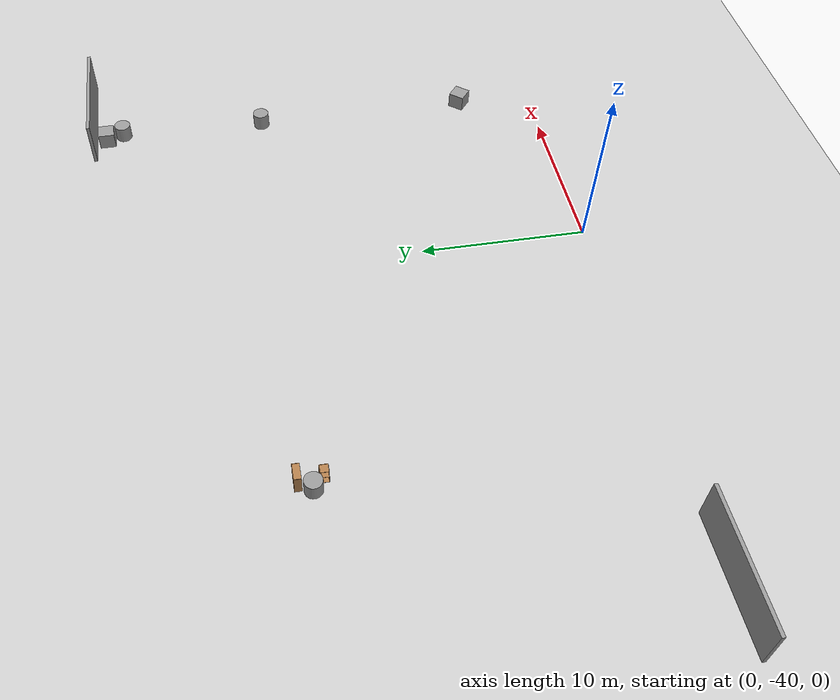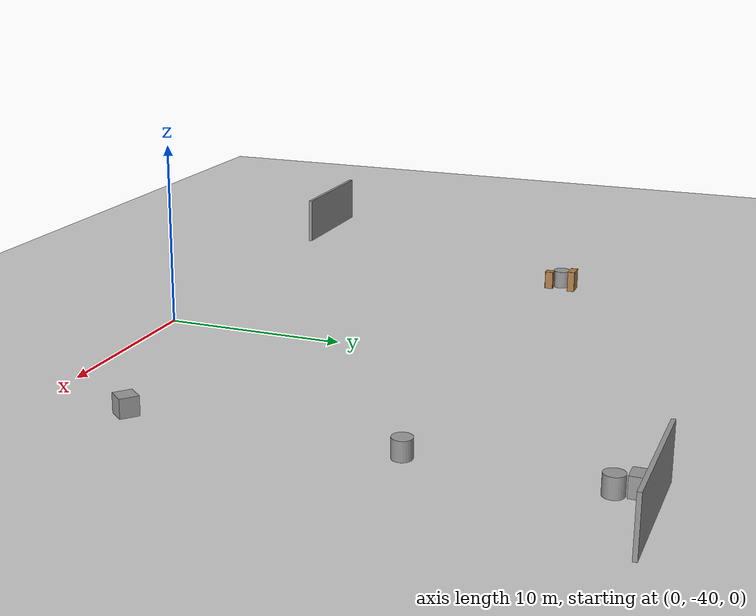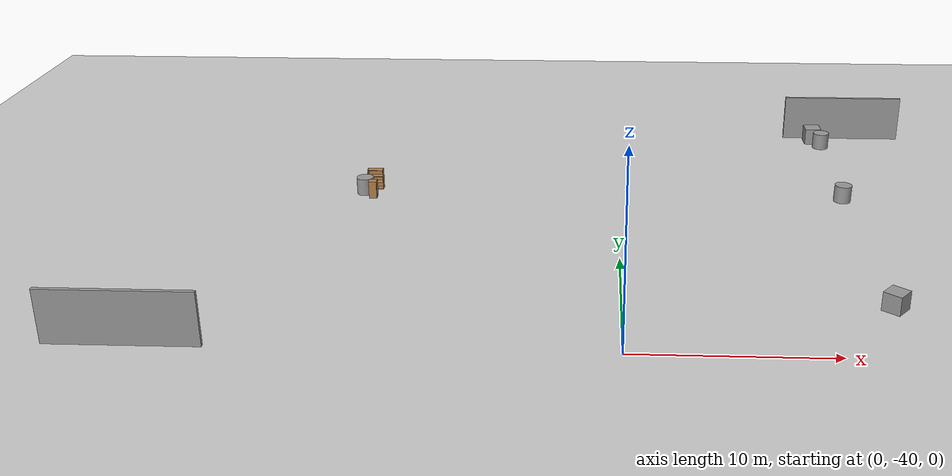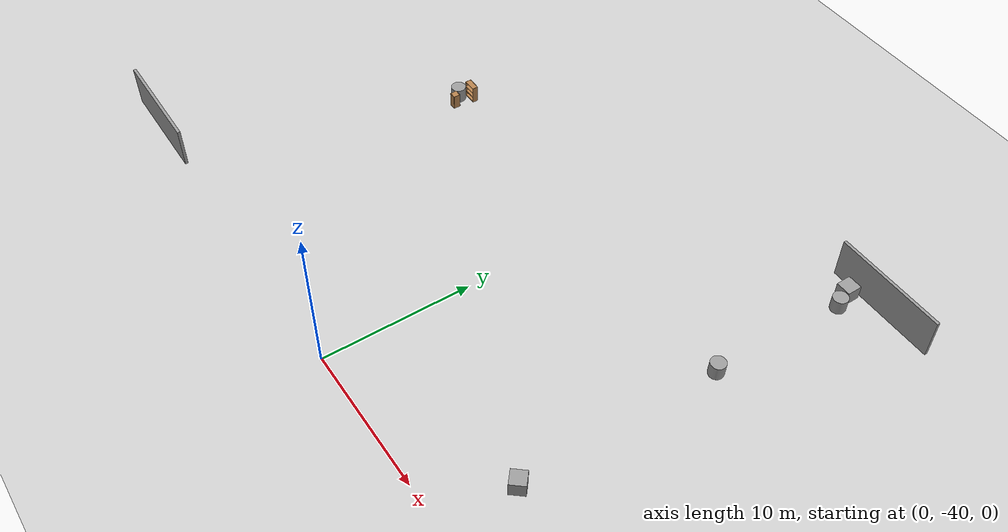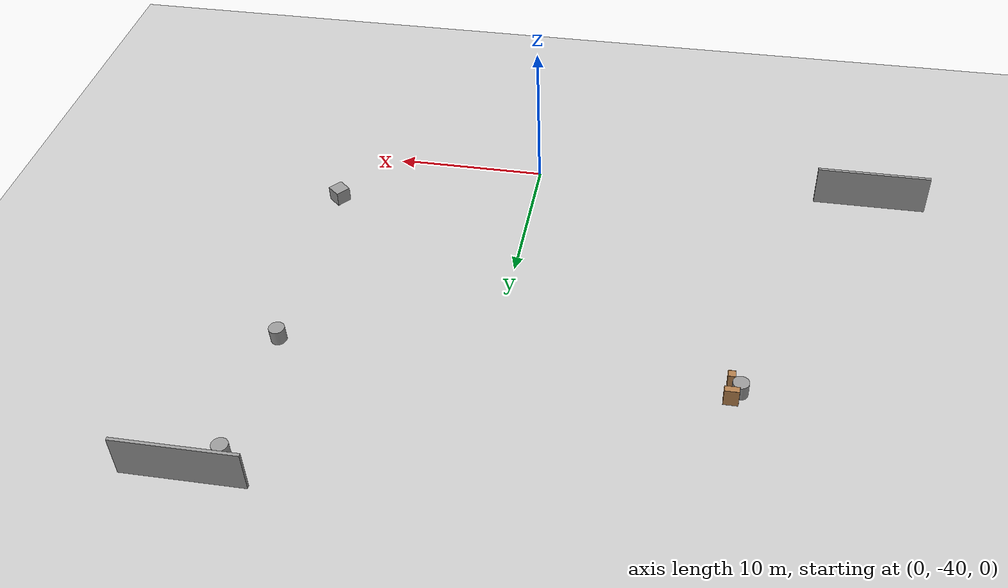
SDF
<sdf version="1.4">
 <world name="default">
  <light name="sun" type="directional">
   <pose>0 0 10 0 -0 0</pose>
   <diffuse>0.8 0.8 0.8 1</diffuse>
   <specular>0.2 0.2 0.2 1</specular>
   <attenuation>
    <range>1000</range>
    <constant>0.9</constant>
    <linear>0.01</linear>
    <quadratic>0.001</quadratic>
   </attenuation>
   <direction>-0.5 0.1 -0.9</direction>
  </light>
  <model name="ground_plane">
   <static>1</static>
   <link name="link">
    <collision name="collision">
     <geometry><plane><normal>0 0 1</normal><size>100 100</size></plane></geometry>
     <surface><friction><ode><mu>100</mu><mu2>50</mu2></ode></friction></surface>
    </collision>
    <visual name="visual">
     <cast_shadows>0</cast_shadows>
     <geometry><plane><normal>0 0 1</normal><size>100 100</size></plane></geometry>
     <material>
      <script><uri>file://media/materials/scripts/gazebo.material</uri><name>Gazebo/Grey</name></script>
     </material>
    </visual>
    <velocity_decay><linear>0</linear><angular>0</angular></velocity_decay>
   </link>
  </model>
  <physics type="ode">
   <max_step_size>0.001</max_step_size>
   <real_time_factor>1</real_time_factor>
   <real_time_update_rate>1000</real_time_update_rate>
   <gravity>0 0 -9.8</gravity>
  </physics>
  <scene><ambient>0.4 0.4 0.4 1</ambient><background>0.7 0.7 0.7 1</background><shadows>1</shadows></scene>
  <spherical_coordinates>
   <surface_model>EARTH_WGS84</surface_model>
   <latitude_deg>0</latitude_deg>
   <longitude_deg>0</longitude_deg>
   <elevation>0</elevation>
   <heading_deg>0</heading_deg>
  </spherical_coordinates>
  <model name="grey_wall">
   <static>1</static>
   <link name="link">
    <pose>0 0 1.4 0 -0 0</pose>
    <collision name="collision"><geometry><box><size>7.5 0.2 2.8</size></box></geometry></collision>
    <visual name="visual">
     <cast_shadows>0</cast_shadows>
     <geometry><box><size>7.5 0.2 2.8</size></box></geometry>
     <material>
      <script>
       <uri>model://grey_wall/materials/scripts</uri>
       <uri>model://grey_wall/materials/textures</uri>
       <name>vrc/grey_wall</name>
      </script>
     </material>
    </visual>
    <velocity_decay><linear>0</linear><angular>0</angular></velocity_decay>
   </link>
   <pose>15 -10.5536 0 0 -0 0</pose>
  </model>
  <model name="grey_wall_0">
   <static>1</static>
   <link name="link">
    <pose>0 0 1.4 0 -0 0</pose>
    <collision name="collision"><geometry><box><size>7.5 0.2 2.8</size></box></geometry></collision>
    <visual name="visual">
     <cast_shadows>0</cast_shadows>
     <geometry><box><size>7.5 0.2 2.8</size></box></geometry>
     <material>
      <script>
       <uri>model://grey_wall/materials/scripts</uri>
       <uri>model://grey_wall/materials/textures</uri>
       <name>vrc/grey_wall</name>
      </script>
     </material>
    </visual>
    <velocity_decay><linear>0</linear><angular>0</angular></velocity_decay>
   </link>
   <pose>-23 -40 0 0 -0 0</pose>
  </model>
  <model name="unit_box_1">
   <pose>13.234 -35.2182 0.5 0 -0 -0.693617</pose>
   <link name="link">
    <inertial>
     <mass>1</mass>
     <inertia><ixx>1</ixx><ixy>0</ixy><ixz>0</ixz><iyy>1</iyy><iyz>0</iyz><izz>1</izz></inertia>
    </inertial>
    <collision name="collision"><geometry><box><size>1 1 1</size></box></geometry></collision>
    <visual name="visual">
     <geometry><box><size>1 1 1</size></box></geometry>
     <material>
      <script><uri>file://media/materials/scripts/gazebo.material</uri><name>Gazebo/Grey</name></script>
     </material>
    </visual>
    <velocity_decay><linear>0</linear><angular>0</angular></velocity_decay>
   </link>
   <static>0</static>
  </model>
  <model name="unit_cylinder_1">
   <pose>13.1694 -21.5949 0.514126 -0.00739 0.027698 0.148297</pose>
   <link name="link">
    <inertial>
     <mass>1</mass>
     <inertia><ixx>1</ixx><ixy>0</ixy><ixz>0</ixz><iyy>1</iyy><iyz>0</iyz><izz>1</izz></inertia>
    </inertial>
    <collision name="collision">
     <geometry><cylinder><radius>0.5</radius><length>1</length></cylinder></geometry>
    </collision>
    <visual name="visual">
     <geometry><cylinder><radius>0.5</radius><length>1</length></cylinder></geometry>
     <material>
      <script><uri>file://media/materials/scripts/gazebo.material</uri><name>Gazebo/Grey</name></script>
     </material>
    </visual>
    <velocity_decay><linear>0</linear><angular>0</angular></velocity_decay>
   </link>
   <static>0</static>
  </model>
  <model name="unit_box_2">
   <pose>13.005 -11.3635 0.5 0 -0 0.009973</pose>
   <link name="link">
    <inertial>
     <mass>1</mass>
     <inertia><ixx>1</ixx><ixy>0</ixy><ixz>0</ixz><iyy>1</iyy><iyz>0</iyz><izz>1</izz></inertia>
    </inertial>
    <collision name="collision"><geometry><box><size>1 1 1</size></box></geometry></collision>
    <visual name="visual">
     <geometry><box><size>1 1 1</size></box></geometry>
     <material>
      <script><uri>file://media/materials/scripts/gazebo.material</uri><name>Gazebo/Grey</name></script>
     </material>
    </visual>
    <velocity_decay><linear>0</linear><angular>0</angular></velocity_decay>
   </link>
   <static>0</static>
  </model>
  <model name="unit_cylinder_2">
   <pose>13.4096 -12.4257 0.499992 -1e-06 -0 0</pose>
   <link name="link">
    <inertial>
     <mass>1</mass>
     <inertia><ixx>1</ixx><ixy>0</ixy><ixz>0</ixz><iyy>1</iyy><iyz>0</iyz><izz>1</izz></inertia>
    </inertial>
    <collision name="collision">
     <geometry><cylinder><radius>0.5</radius><length>1</length></cylinder></geometry>
    </collision>
    <visual name="visual">
     <geometry><cylinder><radius>0.5</radius><length>1</length></cylinder></geometry>
     <material>
      <script><uri>file://media/materials/scripts/gazebo.material</uri><name>Gazebo/Grey</name></script>
     </material>
    </visual>
    <velocity_decay><linear>0</linear><angular>0</angular></velocity_decay>
   </link>
   <static>0</static>
  </model>
  <model name="bookshelf">
   <static>1</static>
   <link name="link">
    <inertial><mass>1</mass></inertial>
    <collision name="back">
     <pose>0 0.005 0.6 0 -0 0</pose>
     <geometry><box><size>0.9 0.01 1.2</size></box></geometry>
    </collision>
    <visual name="visual1">
     <pose>0 0.005 0.6 0 -0 0</pose>
     <geometry><box><size>0.9 0.01 1.2</size></box></geometry>
     <material>
      <script><uri>file://media/materials/scripts/gazebo.material</uri><name>Gazebo/Wood</name></script>
     </material>
    </visual>
    <collision name="left_side">
     <pose>0.45 -0.195 0.6 0 -0 0</pose>
     <geometry><box><size>0.02 0.4 1.2</size></box></geometry>
    </collision>
    <visual name="visual2">
     <pose>0.45 -0.195 0.6 0 -0 0</pose>
     <geometry><box><size>0.02 0.4 1.2</size></box></geometry>
     <material>
      <script><uri>file://media/materials/scripts/gazebo.material</uri><name>Gazebo/Wood</name></script>
     </material>
    </visual>
    <collision name="right_side">
     <pose>-0.45 -0.195 0.6 0 -0 0</pose>
     <geometry><box><size>0.02 0.4 1.2</size></box></geometry>
    </collision>
    <visual name="visual3">
     <pose>-0.45 -0.195 0.6 0 -0 0</pose>
     <geometry><box><size>0.02 0.4 1.2</size></box></geometry>
     <material>
      <script><uri>file://media/materials/scripts/gazebo.material</uri><name>Gazebo/Wood</name></script>
     </material>
    </visual>
    <collision name="bottom">
     <pose>0 -0.195 0.03 0 -0 0</pose>
     <geometry><box><size>0.88 0.4 0.06</size></box></geometry>
    </collision>
    <visual name="visual4">
     <pose>0 -0.195 0.03 0 -0 0</pose>
     <geometry><box><size>0.88 0.4 0.06</size></box></geometry>
     <material>
      <script><uri>file://media/materials/scripts/gazebo.material</uri><name>Gazebo/Wood</name></script>
     </material>
    </visual>
    <collision name="top">
     <pose>0 -0.195 1.19 0 -0 0</pose>
     <geometry><box><size>0.88 0.4 0.02</size></box></geometry>
    </collision>
    <visual name="visual5">
     <pose>0 -0.195 1.19 0 -0 0</pose>
     <geometry><box><size>0.88 0.4 0.02</size></box></geometry>
     <material>
      <script><uri>file://media/materials/scripts/gazebo.material</uri><name>Gazebo/Wood</name></script>
     </material>
    </visual>
    <collision name="low_shelf">
     <pose>0 -0.195 0.43 0 -0 0</pose>
     <geometry><box><size>0.88 0.4 0.02</size></box></geometry>
    </collision>
    <visual name="visual6">
     <pose>0 -0.195 0.43 0 -0 0</pose>
     <geometry><box><size>0.88 0.4 0.02</size></box></geometry>
     <material>
      <script><uri>file://media/materials/scripts/gazebo.material</uri><name>Gazebo/Wood</name></script>
     </material>
    </visual>
    <collision name="high_shelf">
     <pose>0 -0.195 0.8 0 -0 0</pose>
     <geometry><box><size>0.88 0.4 0.02</size></box></geometry>
    </collision>
    <visual name="visual7">
     <pose>0 -0.195 0.8 0 -0 0</pose>
     <geometry><box><size>0.88 0.4 0.02</size></box></geometry>
     <material>
      <script><uri>file://media/materials/scripts/gazebo.material</uri><name>Gazebo/Wood</name></script>
     </material>
    </visual>
    <velocity_decay><linear>0</linear><angular>0</angular></velocity_decay>
   </link>
   <pose>-14.5185 -20.4241 0 0 -0 0</pose>
  </model>
  <model name="cabinet">
   <static>1</static>
   <link name="cabinet_bottom_plate">
    <inertial>
     <pose>0 0 -1 0 -0 0</pose>
     <inertia><ixx>2.05</ixx><ixy>0</ixy><ixz>0</ixz><iyy>2.05</iyy><iyz>0</iyz><izz>2.05</izz></inertia>
     <mass>25</mass>
    </inertial>
    <collision name="cabinet_bottom_plate_geom">
     <pose>0 0 0.01 0 -0 0</pose>
     <geometry><box><size>0.45 0.45 0.02</size></box></geometry>
    </collision>
    <visual name="cabinet_bottom_plate_geom_visual">
     <pose>0 0 0.01 0 -0 0</pose>
     <geometry><box><size>0.45 0.45 0.02</size></box></geometry>
     <material>
      <script><uri>file://media/materials/scripts/gazebo.material</uri><name>Gazebo/Wood</name></script>
     </material>
    </visual>
    <collision name="cabinet_bottom_plate_geom_cabinet_back_plate">
     <pose>0.235 0 0.51 0 -0 0</pose>
     <geometry><box><size>0.02 0.45 1.02</size></box></geometry>
    </collision>
    <visual name="cabinet_bottom_plate_geom_cabinet_back_plate_visual">
     <pose>0.235 0 0.51 0 -0 0</pose>
     <geometry><box><size>0.02 0.45 1.02</size></box></geometry>
     <material>
      <script><uri>file://media/materials/scripts/gazebo.material</uri><name>Gazebo/Wood</name></script>
     </material>
    </visual>
    <collision name="cabinet_bottom_plate_geom_cabinet_left_plate">
     <pose>0 0.235 0.51 0 -0 0</pose>
     <geometry><box><size>0.45 0.02 1.02</size></box></geometry>
    </collision>
    <visual name="cabinet_bottom_plate_geom_cabinet_left_plate_visual">
     <pose>0 0.235 0.51 0 -0 0</pose>
     <geometry><box><size>0.45 0.02 1.02</size></box></geometry>
     <material>
      <script><uri>file://media/materials/scripts/gazebo.material</uri><name>Gazebo/Wood</name></script>
     </material>
    </visual>
    <collision name="cabinet_bottom_plate_geom_cabinet_middle_plate">
     <pose>0 0 0.51 0 -0 0</pose>
     <geometry><box><size>0.45 0.45 0.02</size></box></geometry>
    </collision>
    <visual name="cabinet_bottom_plate_geom_cabinet_middle_plate_visual">
     <pose>0 0 0.51 0 -0 0</pose>
     <geometry><box><size>0.45 0.45 0.02</size></box></geometry>
     <material>
      <script><uri>file://media/materials/scripts/gazebo.material</uri><name>Gazebo/Wood</name></script>
     </material>
    </visual>
    <collision name="cabinet_bottom_plate_geom_cabinet_right_plate">
     <pose>0 -0.235 0.51 0 -0 0</pose>
     <geometry><box><size>0.45 0.02 1.02</size></box></geometry>
    </collision>
    <visual name="cabinet_bottom_plate_geom_cabinet_right_plate_visual">
     <pose>0 -0.235 0.51 0 -0 0</pose>
     <geometry><box><size>0.45 0.02 1.02</size></box></geometry>
     <material>
      <script><uri>file://media/materials/scripts/gazebo.material</uri><name>Gazebo/Wood</name></script>
     </material>
    </visual>
    <collision name="cabinet_bottom_plate_geom_cabinet_top_plate">
     <pose>0 0 1.01 0 -0 0</pose>
     <geometry><box><size>0.45 0.45 0.02</size></box></geometry>
    </collision>
    <visual name="cabinet_bottom_plate_geom_cabinet_top_plate_visual">
     <pose>0 0 1.01 0 -0 0</pose>
     <geometry><box><size>0.45 0.45 0.02</size></box></geometry>
     <material>
      <script><uri>file://media/materials/scripts/gazebo.material</uri><name>Gazebo/Wood</name></script>
     </material>
    </visual>
    <velocity_decay><linear>0</linear><angular>0</angular></velocity_decay>
   </link>
   <pose>-14.4608 -22 0 0 -0 0</pose>
  </model>
  <model name="unit_cylinder_3">
   <pose>-15.0217 -21.3846 0.499993 0 -0 0.000216</pose>
   <link name="link">
    <inertial>
     <mass>1</mass>
     <inertia><ixx>1</ixx><ixy>0</ixy><ixz>0</ixz><iyy>1</iyy><iyz>0</iyz><izz>1</izz></inertia>
    </inertial>
    <collision name="collision">
     <geometry><cylinder><radius>0.5</radius><length>1</length></cylinder></geometry>
    </collision>
    <visual name="visual">
     <geometry><cylinder><radius>0.5</radius><length>1</length></cylinder></geometry>
     <material>
      <script><uri>file://media/materials/scripts/gazebo.material</uri><name>Gazebo/Grey</name></script>
     </material>
    </visual>
    <velocity_decay><linear>0</linear><angular>0</angular></velocity_decay>
   </link>
   <static>0</static>
  </model>
 </world>
</sdf>
